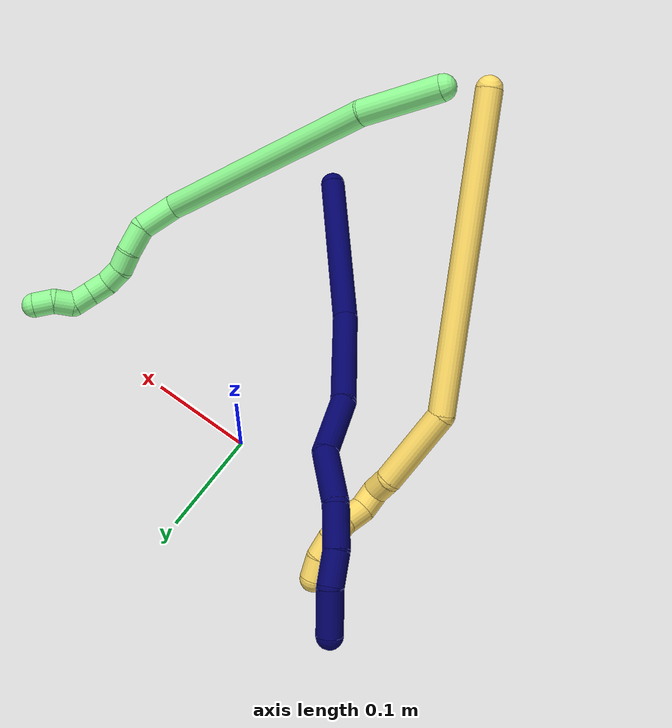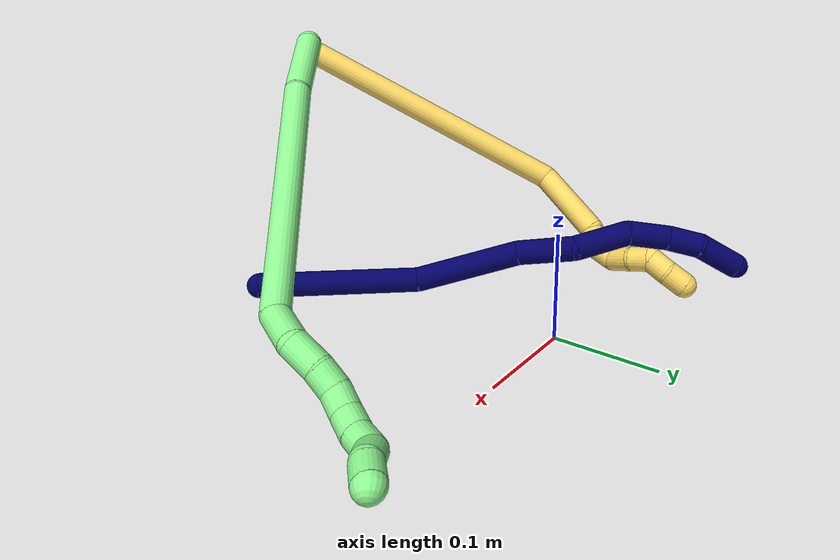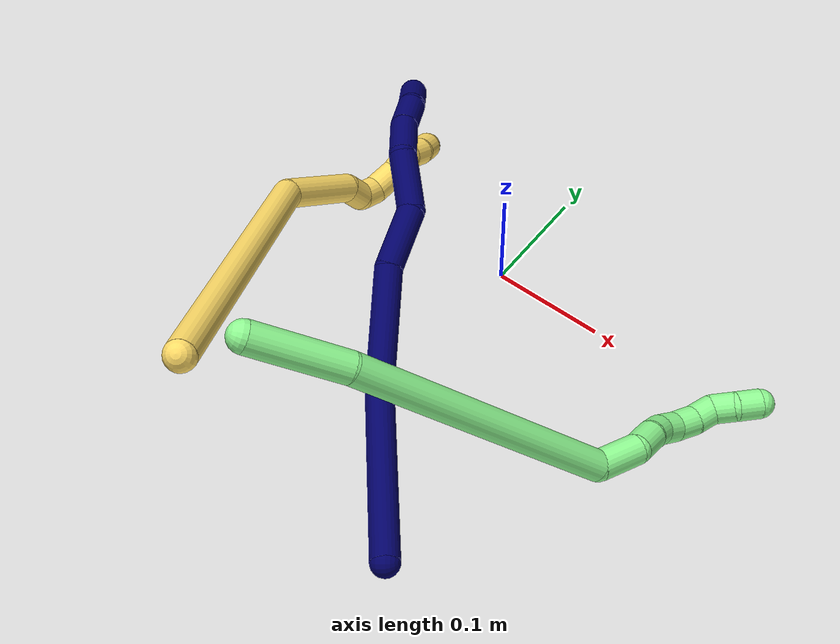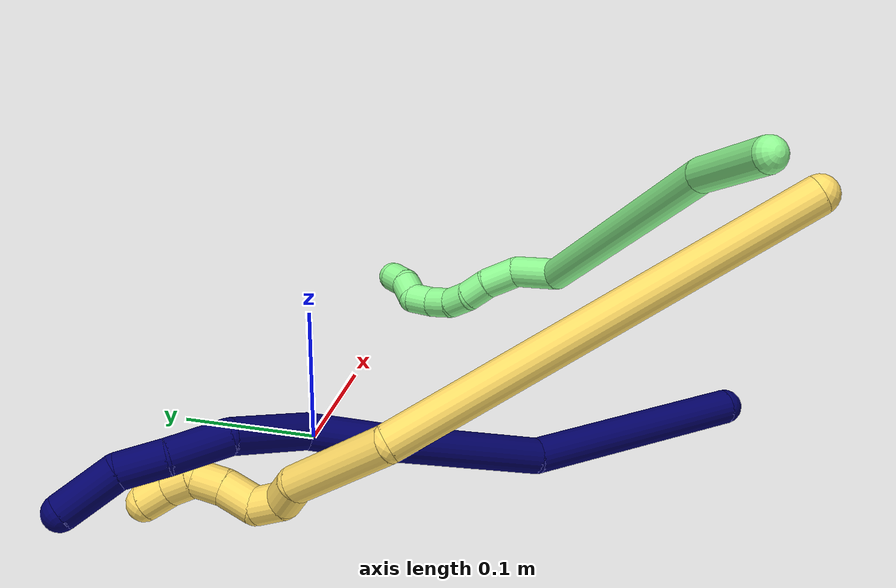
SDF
<sdf version="1.7">
 <world name="default">
  <model name="photoneo_s_sensor">
   <static>1</static>
   <pose>0 0 2 1.57079 1.57079 3.14159</pose>
   <link name="link">
    <inertial><mass>0.1</mass></inertial>
    <sensor name="sensor" type="depth">
     <update_rate>30</update_rate>
     <camera>
      <horizontal_fov>1.22</horizontal_fov>
      <image><width>1920</width><height>1200</height><format>B8G8R8</format></image>
      <clip><near>0.1</near><far>4</far></clip>
      <depth_camera><output>points</output></depth_camera>
     </camera>
     <plugin name="camera_plugin" filename="libgazebo_ros_depth_camera.so">
      <baseline>0.2</baseline>
      <alwaysOn>1</alwaysOn>
      <updateRate>0.0</updateRate>
      <cameraName>camera_ir</cameraName>
      <imageTopicName>/camera/color/image_raw</imageTopicName>
      <cameraInfoTopicName>/camera/color/camera_info</cameraInfoTopicName>
      <depthImageTopicName>/camera/depth/image_raw</depthImageTopicName>
      <depthImageCameraInfoTopicName>/camera/depth/camera_info</depthImageCameraInfoTopicName>
      <pointCloudTopicName>/camera/depth/points</pointCloudTopicName>
      <frameName>fr_optical</frameName>
      <pointCloudCutoff>0.1</pointCloudCutoff>
      <pointCloudCutoffMax>2.0</pointCloudCutoffMax>
      <distortionK1>0</distortionK1>
      <distortionK2>0</distortionK2>
      <distortionK3>0</distortionK3>
      <distortionT1>0</distortionT1>
      <distortionT2>0</distortionT2>
      <CxPrime>0</CxPrime>
      <Cx>0</Cx>
      <Cy>0</Cy>
      <focalLength>0</focalLength>
      <hackBaseline>0</hackBaseline>
     </plugin>
    </sensor>
   </link>
  </model>
  <model name="bin">
   <static>1</static>
   <link name="bottom">
    <collision name="collision-bottom">
     <pose>0 0 -0.01 0 -0 0</pose>
     <geometry><box><size>0.8 0.6 0.02</size></box></geometry>
     <surface>
      <friction><ode><mu>100</mu><mu2>100</mu2></ode></friction>
      <contact><collide_bitmask>65535</collide_bitmask></contact>
     </surface>
    </collision>
   </link>
   <link name="west_wall">
    <collision name="collision-west_wall">
     <pose>-0.41 0 0.1 0 -0 0</pose>
     <geometry><box><size>0.02 0.6 0.2</size></box></geometry>
     <surface>
      <friction><ode><mu>100</mu><mu2>100</mu2></ode></friction>
      <contact><collide_bitmask>65535</collide_bitmask></contact>
     </surface>
    </collision>
   </link>
   <link name="east_wall">
    <collision name="collision-east_wall">
     <pose>0.41 0 0.1 0 -0 0</pose>
     <geometry><box><size>0.02 0.6 0.2</size></box></geometry>
     <surface>
      <friction><ode><mu>100</mu><mu2>100</mu2></ode></friction>
      <contact><collide_bitmask>65535</collide_bitmask></contact>
     </surface>
    </collision>
   </link>
   <link name="south_wall">
    <collision name="collision-south_wall">
     <pose>0 -0.31 0.1 0 -0 0</pose>
     <geometry><box><size>0.8 0.02 0.2</size></box></geometry>
     <surface>
      <friction><ode><mu>100</mu><mu2>100</mu2></ode></friction>
      <contact><collide_bitmask>65535</collide_bitmask></contact>
     </surface>
    </collision>
   </link>
   <link name="north_wall">
    <collision name="collision-north_wall">
     <pose>0 0.31 0.1 0 -0 0</pose>
     <geometry><box><size>0.8 0.02 0.2</size></box></geometry>
     <surface>
      <friction><ode><mu>100</mu><mu2>100</mu2></ode></friction>
      <contact><collide_bitmask>65535</collide_bitmask></contact>
     </surface>
    </collision>
   </link>
  </model>
  <model name="5">
   <static>0</static>
   <link name="5">
    <collision name="collision-cylinder-e_1_1_4">
     <pose>-0.034949 0.068819 -0.125166 -2.63889 -0.239962 0.877903</pose>
     <geometry><cylinder><radius>0.0125</radius><length>0.294103</length></cylinder></geometry>
     <surface>
      <friction><ode><mu>1.16</mu><mu2>1.16</mu2><slip1>0</slip1><slip2>0</slip2></ode></friction>
      <contact><ode><kp>1e+06</kp><kd>1</kd><max_vel>0</max_vel><min_depth>0.001</min_depth></ode></contact>
     </surface>
    </collision>
    <visual name="visual-cylinder-e_1_1_4">
     <pose>-0.034949 0.068819 -0.125166 -2.63889 -0.239962 0.877903</pose>
     <geometry><cylinder><radius>0.0125</radius><length>0.294103</length></cylinder></geometry>
     <material><ambient>1 0.858824 0.4 1</ambient></material>
    </visual>
    <collision name="collision-cylinder-e_2_4_5">
     <pose>-0.057852 0.155744 -0.282515 -2.62912 0.315341 -1.09088</pose>
     <geometry><cylinder><radius>0.0125</radius><length>0.077682</length></cylinder></geometry>
     <surface>
      <friction><ode><mu>1.16</mu><mu2>1.16</mu2><slip1>0</slip1><slip2>0</slip2></ode></friction>
      <contact><ode><kp>1e+06</kp><kd>1</kd><max_vel>0</max_vel><min_depth>0.001</min_depth></ode></contact>
     </surface>
    </collision>
    <visual name="visual-cylinder-e_2_4_5">
     <pose>-0.057852 0.155744 -0.282515 -2.62912 0.315341 -1.09088</pose>
     <geometry><cylinder><radius>0.0125</radius><length>0.077682</length></cylinder></geometry>
     <material><ambient>1 0.858824 0.4 1</ambient></material>
    </visual>
    <collision name="collision-cylinder-e_3_5_6">
     <pose>-0.040585 0.174831 -0.324072 -3.03733 0.505782 -2.74312</pose>
     <geometry><cylinder><radius>0.0125</radius><length>0.021552</length></cylinder></geometry>
     <surface>
      <friction><ode><mu>1.16</mu><mu2>1.16</mu2><slip1>0</slip1><slip2>0</slip2></ode></friction>
      <contact><ode><kp>1e+06</kp><kd>1</kd><max_vel>0</max_vel><min_depth>0.001</min_depth></ode></contact>
     </surface>
    </collision>
    <visual name="visual-cylinder-e_3_5_6">
     <pose>-0.040585 0.174831 -0.324072 -3.03733 0.505782 -2.74312</pose>
     <geometry><cylinder><radius>0.0125</radius><length>0.021552</length></cylinder></geometry>
     <material><ambient>1 0.858824 0.4 1</ambient></material>
    </visual>
    <collision name="collision-cylinder-e_4_6_7">
     <pose>-0.033406 0.182356 -0.340935 -2.4233 0.194379 -0.508166</pose>
     <geometry><cylinder><radius>0.0125</radius><length>0.02027</length></cylinder></geometry>
     <surface>
      <friction><ode><mu>1.16</mu><mu2>1.16</mu2><slip1>0</slip1><slip2>0</slip2></ode></friction>
      <contact><ode><kp>1e+06</kp><kd>1</kd><max_vel>0</max_vel><min_depth>0.001</min_depth></ode></contact>
     </surface>
    </collision>
    <visual name="visual-cylinder-e_4_6_7">
     <pose>-0.033406 0.182356 -0.340935 -2.4233 0.194379 -0.508166</pose>
     <geometry><cylinder><radius>0.0125</radius><length>0.02027</length></cylinder></geometry>
     <material><ambient>1 0.858824 0.4 1</ambient></material>
    </visual>
    <collision name="collision-cylinder-e_5_7_8">
     <pose>-0.028864 0.200844 -0.349955 -1.69843 0.211434 -0.240041</pose>
     <geometry><cylinder><radius>0.0125</radius><length>0.024633</length></cylinder></geometry>
     <surface>
      <friction><ode><mu>1.16</mu><mu2>1.16</mu2><slip1>0</slip1><slip2>0</slip2></ode></friction>
      <contact><ode><kp>1e+06</kp><kd>1</kd><max_vel>0</max_vel><min_depth>0.001</min_depth></ode></contact>
     </surface>
    </collision>
    <visual name="visual-cylinder-e_5_7_8">
     <pose>-0.028864 0.200844 -0.349955 -1.69843 0.211434 -0.240041</pose>
     <geometry><cylinder><radius>0.0125</radius><length>0.024633</length></cylinder></geometry>
     <material><ambient>1 0.858824 0.4 1</ambient></material>
    </visual>
    <collision name="collision-cylinder-e_6_8_9">
     <pose>-0.026305 0.222703 -0.354307 -1.84777 -0.002538 0.00336</pose>
     <geometry><cylinder><radius>0.0125</radius><length>0.020615</length></cylinder></geometry>
     <surface>
      <friction><ode><mu>1.16</mu><mu2>1.16</mu2><slip1>0</slip1><slip2>0</slip2></ode></friction>
      <contact><ode><kp>1e+06</kp><kd>1</kd><max_vel>0</max_vel><min_depth>0.001</min_depth></ode></contact>
     </surface>
    </collision>
    <visual name="visual-cylinder-e_6_8_9">
     <pose>-0.026305 0.222703 -0.354307 -1.84777 -0.002538 0.00336</pose>
     <geometry><cylinder><radius>0.0125</radius><length>0.020615</length></cylinder></geometry>
     <material><ambient>1 0.858824 0.4 1</ambient></material>
    </visual>
    <collision name="collision-cylinder-e_7_9_10">
     <pose>-0.024725 0.238242 -0.365445 -2.54716 0.158585 -0.507657</pose>
     <geometry><cylinder><radius>0.0125</radius><length>0.020341</length></cylinder></geometry>
     <surface>
      <friction><ode><mu>1.16</mu><mu2>1.16</mu2><slip1>0</slip1><slip2>0</slip2></ode></friction>
      <contact><ode><kp>1e+06</kp><kd>1</kd><max_vel>0</max_vel><min_depth>0.001</min_depth></ode></contact>
     </surface>
    </collision>
    <visual name="visual-cylinder-e_7_9_10">
     <pose>-0.024725 0.238242 -0.365445 -2.54716 0.158585 -0.507657</pose>
     <geometry><cylinder><radius>0.0125</radius><length>0.020341</length></cylinder></geometry>
     <material><ambient>1 0.858824 0.4 1</ambient></material>
    </visual>
    <collision name="collision-cylinder-e_8_10_2">
     <pose>-0.023734 0.248555 -0.383031 -2.6732 -0.059143 0.246715</pose>
     <geometry><cylinder><radius>0.0125</radius><length>0.020805</length></cylinder></geometry>
     <surface>
      <friction><ode><mu>1.16</mu><mu2>1.16</mu2><slip1>0</slip1><slip2>0</slip2></ode></friction>
      <contact><ode><kp>1e+06</kp><kd>1</kd><max_vel>0</max_vel><min_depth>0.001</min_depth></ode></contact>
     </surface>
    </collision>
    <visual name="visual-cylinder-e_8_10_2">
     <pose>-0.023734 0.248555 -0.383031 -2.6732 -0.059143 0.246715</pose>
     <geometry><cylinder><radius>0.0125</radius><length>0.020805</length></cylinder></geometry>
     <material><ambient>1 0.858824 0.4 1</ambient></material>
    </visual>
    <collision name="collision-sphere-2">
     <pose>-0.024349 0.253243 -0.392297 0 -0 0</pose>
     <geometry><sphere><radius>0.0125</radius></sphere></geometry>
     <surface>
      <friction><ode><mu>1.16</mu><mu2>1.16</mu2><slip1>0</slip1><slip2>0</slip2></ode></friction>
      <contact><ode><kp>1e+06</kp><kd>1</kd><max_vel>0</max_vel><min_depth>0.001</min_depth></ode></contact>
     </surface>
    </collision>
    <visual name="visual-sphere-2">
     <pose>-0.024349 0.253243 -0.392297 0 -0 0</pose>
     <geometry><sphere><radius>0.0125</radius></sphere></geometry>
     <material><ambient>1 0.858824 0.4 1</ambient></material>
    </visual>
    <collision name="collision-sphere-10">
     <pose>-0.023119 0.243866 -0.373765 0 -0 0</pose>
     <geometry><sphere><radius>0.0125</radius></sphere></geometry>
     <surface>
      <friction><ode><mu>1.16</mu><mu2>1.16</mu2><slip1>0</slip1><slip2>0</slip2></ode></friction>
      <contact><ode><kp>1e+06</kp><kd>1</kd><max_vel>0</max_vel><min_depth>0.001</min_depth></ode></contact>
     </surface>
    </collision>
    <visual name="visual-sphere-10">
     <pose>-0.023119 0.243866 -0.373765 0 -0 0</pose>
     <geometry><sphere><radius>0.0125</radius></sphere></geometry>
     <material><ambient>1 0.858824 0.4 1</ambient></material>
    </visual>
    <collision name="collision-sphere-9">
     <pose>-0.026332 0.232618 -0.357125 0 -0 0</pose>
     <geometry><sphere><radius>0.0125</radius></sphere></geometry>
     <surface>
      <friction><ode><mu>1.16</mu><mu2>1.16</mu2><slip1>0</slip1><slip2>0</slip2></ode></friction>
      <contact><ode><kp>1e+06</kp><kd>1</kd><max_vel>0</max_vel><min_depth>0.001</min_depth></ode></contact>
     </surface>
    </collision>
    <visual name="visual-sphere-9">
     <pose>-0.026332 0.232618 -0.357125 0 -0 0</pose>
     <geometry><sphere><radius>0.0125</radius></sphere></geometry>
     <material><ambient>1 0.858824 0.4 1</ambient></material>
    </visual>
    <collision name="collision-sphere-4">
     <pose>-0.069898 0.137638 -0.250333 0 -0 0</pose>
     <geometry><sphere><radius>0.0125</radius></sphere></geometry>
     <surface>
      <friction><ode><mu>1.16</mu><mu2>1.16</mu2><slip1>0</slip1><slip2>0</slip2></ode></friction>
      <contact><ode><kp>1e+06</kp><kd>1</kd><max_vel>0</max_vel><min_depth>0.001</min_depth></ode></contact>
     </surface>
    </collision>
    <visual name="visual-sphere-4">
     <pose>-0.069898 0.137638 -0.250333 0 -0 0</pose>
     <geometry><sphere><radius>0.0125</radius></sphere></geometry>
     <material><ambient>1 0.858824 0.4 1</ambient></material>
    </visual>
    <collision name="collision-sphere-1">
     <geometry><sphere><radius>0.0125</radius></sphere></geometry>
     <surface>
      <friction><ode><mu>1.16</mu><mu2>1.16</mu2><slip1>0</slip1><slip2>0</slip2></ode></friction>
      <contact><ode><kp>1e+06</kp><kd>1</kd><max_vel>0</max_vel><min_depth>0.001</min_depth></ode></contact>
     </surface>
    </collision>
    <visual name="visual-sphere-1">
     <geometry><sphere><radius>0.0125</radius></sphere></geometry>
     <material><ambient>1 0.858824 0.4 1</ambient></material>
    </visual>
    <collision name="collision-sphere-8">
     <pose>-0.026279 0.212788 -0.351488 0 -0 0</pose>
     <geometry><sphere><radius>0.0125</radius></sphere></geometry>
     <surface>
      <friction><ode><mu>1.16</mu><mu2>1.16</mu2><slip1>0</slip1><slip2>0</slip2></ode></friction>
      <contact><ode><kp>1e+06</kp><kd>1</kd><max_vel>0</max_vel><min_depth>0.001</min_depth></ode></contact>
     </surface>
    </collision>
    <visual name="visual-sphere-8">
     <pose>-0.026279 0.212788 -0.351488 0 -0 0</pose>
     <geometry><sphere><radius>0.0125</radius></sphere></geometry>
     <material><ambient>1 0.858824 0.4 1</ambient></material>
    </visual>
    <collision name="collision-sphere-5">
     <pose>-0.045806 0.17385 -0.314697 0 -0 0</pose>
     <geometry><sphere><radius>0.0125</radius></sphere></geometry>
     <surface>
      <friction><ode><mu>1.16</mu><mu2>1.16</mu2><slip1>0</slip1><slip2>0</slip2></ode></friction>
      <contact><ode><kp>1e+06</kp><kd>1</kd><max_vel>0</max_vel><min_depth>0.001</min_depth></ode></contact>
     </surface>
    </collision>
    <visual name="visual-sphere-5">
     <pose>-0.045806 0.17385 -0.314697 0 -0 0</pose>
     <geometry><sphere><radius>0.0125</radius></sphere></geometry>
     <material><ambient>1 0.858824 0.4 1</ambient></material>
    </visual>
    <collision name="collision-sphere-6">
     <pose>-0.035364 0.175812 -0.333448 0 -0 0</pose>
     <geometry><sphere><radius>0.0125</radius></sphere></geometry>
     <surface>
      <friction><ode><mu>1.16</mu><mu2>1.16</mu2><slip1>0</slip1><slip2>0</slip2></ode></friction>
      <contact><ode><kp>1e+06</kp><kd>1</kd><max_vel>0</max_vel><min_depth>0.001</min_depth></ode></contact>
     </surface>
    </collision>
    <visual name="visual-sphere-6">
     <pose>-0.035364 0.175812 -0.333448 0 -0 0</pose>
     <geometry><sphere><radius>0.0125</radius></sphere></geometry>
     <material><ambient>1 0.858824 0.4 1</ambient></material>
    </visual>
    <collision name="collision-sphere-7">
     <pose>-0.031449 0.1889 -0.348422 0 -0 0</pose>
     <geometry><sphere><radius>0.0125</radius></sphere></geometry>
     <surface>
      <friction><ode><mu>1.16</mu><mu2>1.16</mu2><slip1>0</slip1><slip2>0</slip2></ode></friction>
      <contact><ode><kp>1e+06</kp><kd>1</kd><max_vel>0</max_vel><min_depth>0.001</min_depth></ode></contact>
     </surface>
    </collision>
    <visual name="visual-sphere-7">
     <pose>-0.031449 0.1889 -0.348422 0 -0 0</pose>
     <geometry><sphere><radius>0.0125</radius></sphere></geometry>
     <material><ambient>1 0.858824 0.4 1</ambient></material>
    </visual>
    <inertial>
     <pose>-0.037149 0.118716 -0.20796 0 -0 0</pose>
     <mass>0.5</mass>
     <inertia>
      <ixx>0.002901</ixx>
      <ixy>0</ixy>
      <ixz>0</ixz>
      <iyy>0.000556</iyy>
      <iyz>0</iyz>
      <izz>-0.000562</izz>
     </inertia>
    </inertial>
   </link>
   <pose>-0.032865 -0.333281 0.232758 0.491814 0.233147 0.07039</pose>
  </model>
  <model name="7">
   <static>0</static>
   <link name="7">
    <collision name="collision-cylinder-e_1_1_4">
     <pose>-0.051455 -0.059579 0.014661 1.32951 -0.697855 -0.555537</pose>
     <geometry><cylinder><radius>0.0125</radius><length>0.160154</length></cylinder></geometry>
     <surface>
      <friction><ode><mu>1.16</mu><mu2>1.16</mu2><slip1>0</slip1><slip2>0</slip2></ode></friction>
      <contact><ode><kp>1e+06</kp><kd>1</kd><max_vel>0</max_vel><min_depth>0.001</min_depth></ode></contact>
     </surface>
    </collision>
    <visual name="visual-cylinder-e_1_1_4">
     <pose>-0.051455 -0.059579 0.014661 1.32951 -0.697855 -0.555537</pose>
     <geometry><cylinder><radius>0.0125</radius><length>0.160154</length></cylinder></geometry>
     <material><ambient>0.003922 0 0.403922 1</ambient></material>
    </visual>
    <collision name="collision-cylinder-e_2_4_5">
     <pose>-0.147204 -0.149866 0.029527 1.56412 -0.96458 -0.959107</pose>
     <geometry><cylinder><radius>0.0125</radius><length>0.107794</length></cylinder></geometry>
     <surface>
      <friction><ode><mu>1.16</mu><mu2>1.16</mu2><slip1>0</slip1><slip2>0</slip2></ode></friction>
      <contact><ode><kp>1e+06</kp><kd>1</kd><max_vel>0</max_vel><min_depth>0.001</min_depth></ode></contact>
     </surface>
    </collision>
    <visual name="visual-cylinder-e_2_4_5">
     <pose>-0.147204 -0.149866 0.029527 1.56412 -0.96458 -0.959107</pose>
     <geometry><cylinder><radius>0.0125</radius><length>0.107794</length></cylinder></geometry>
     <material><ambient>0.003922 0 0.403922 1</ambient></material>
    </visual>
    <collision name="collision-cylinder-e_3_5_6">
     <pose>-0.212322 -0.200234 0.022848 1.9076 -0.785281 -1.05686</pose>
     <geometry><cylinder><radius>0.0125</radius><length>0.058911</length></cylinder></geometry>
     <surface>
      <friction><ode><mu>1.16</mu><mu2>1.16</mu2><slip1>0</slip1><slip2>0</slip2></ode></friction>
      <contact><ode><kp>1e+06</kp><kd>1</kd><max_vel>0</max_vel><min_depth>0.001</min_depth></ode></contact>
     </surface>
    </collision>
    <visual name="visual-cylinder-e_3_5_6">
     <pose>-0.212322 -0.200234 0.022848 1.9076 -0.785281 -1.05686</pose>
     <geometry><cylinder><radius>0.0125</radius><length>0.058911</length></cylinder></geometry>
     <material><ambient>0.003922 0 0.403922 1</ambient></material>
    </visual>
    <collision name="collision-cylinder-e_4_6_7">
     <pose>-0.255532 -0.23551 0.021794 1.2135 -0.930716 -0.67073</pose>
     <geometry><cylinder><radius>0.0125</radius><length>0.055816</length></cylinder></geometry>
     <surface>
      <friction><ode><mu>1.16</mu><mu2>1.16</mu2><slip1>0</slip1><slip2>0</slip2></ode></friction>
      <contact><ode><kp>1e+06</kp><kd>1</kd><max_vel>0</max_vel><min_depth>0.001</min_depth></ode></contact>
     </surface>
    </collision>
    <visual name="visual-cylinder-e_4_6_7">
     <pose>-0.255532 -0.23551 0.021794 1.2135 -0.930716 -0.67073</pose>
     <geometry><cylinder><radius>0.0125</radius><length>0.055816</length></cylinder></geometry>
     <material><ambient>0.003922 0 0.403922 1</ambient></material>
    </visual>
    <collision name="collision-cylinder-e_5_7_8">
     <pose>-0.288744 -0.268416 0.030912 1.38288 -0.551561 -0.4602</pose>
     <geometry><cylinder><radius>0.0125</radius><length>0.041329</length></cylinder></geometry>
     <surface>
      <friction><ode><mu>1.16</mu><mu2>1.16</mu2><slip1>0</slip1><slip2>0</slip2></ode></friction>
      <contact><ode><kp>1e+06</kp><kd>1</kd><max_vel>0</max_vel><min_depth>0.001</min_depth></ode></contact>
     </surface>
    </collision>
    <visual name="visual-cylinder-e_5_7_8">
     <pose>-0.288744 -0.268416 0.030912 1.38288 -0.551561 -0.4602</pose>
     <geometry><cylinder><radius>0.0125</radius><length>0.041329</length></cylinder></geometry>
     <material><ambient>0.003922 0 0.403922 1</ambient></material>
    </visual>
    <collision name="collision-cylinder-e_6_8_9">
     <pose>-0.306762 -0.300423 0.034146 1.57446 -0.454453 -0.456064</pose>
     <geometry><cylinder><radius>0.0125</radius><length>0.032757</length></cylinder></geometry>
     <surface>
      <friction><ode><mu>1.16</mu><mu2>1.16</mu2><slip1>0</slip1><slip2>0</slip2></ode></friction>
      <contact><ode><kp>1e+06</kp><kd>1</kd><max_vel>0</max_vel><min_depth>0.001</min_depth></ode></contact>
     </surface>
    </collision>
    <visual name="visual-cylinder-e_6_8_9">
     <pose>-0.306762 -0.300423 0.034146 1.57446 -0.454453 -0.456064</pose>
     <geometry><cylinder><radius>0.0125</radius><length>0.032757</length></cylinder></geometry>
     <material><ambient>0.003922 0 0.403922 1</ambient></material>
    </visual>
    <collision name="collision-cylinder-e_7_9_2">
     <pose>-0.317584 -0.335932 0.038765 1.34973 -0.168788 -0.135179</pose>
     <geometry><cylinder><radius>0.0125</radius><length>0.043239</length></cylinder></geometry>
     <surface>
      <friction><ode><mu>1.16</mu><mu2>1.16</mu2><slip1>0</slip1><slip2>0</slip2></ode></friction>
      <contact><ode><kp>1e+06</kp><kd>1</kd><max_vel>0</max_vel><min_depth>0.001</min_depth></ode></contact>
     </surface>
    </collision>
    <visual name="visual-cylinder-e_7_9_2">
     <pose>-0.317584 -0.335932 0.038765 1.34973 -0.168788 -0.135179</pose>
     <geometry><cylinder><radius>0.0125</radius><length>0.043239</length></cylinder></geometry>
     <material><ambient>0.003922 0 0.403922 1</ambient></material>
    </visual>
    <collision name="collision-sphere-2">
     <pose>-0.321216 -0.356726 0.043439 0 -0 0</pose>
     <geometry><sphere><radius>0.0125</radius></sphere></geometry>
     <surface>
      <friction><ode><mu>1.16</mu><mu2>1.16</mu2><slip1>0</slip1><slip2>0</slip2></ode></friction>
      <contact><ode><kp>1e+06</kp><kd>1</kd><max_vel>0</max_vel><min_depth>0.001</min_depth></ode></contact>
     </surface>
    </collision>
    <visual name="visual-sphere-2">
     <pose>-0.321216 -0.356726 0.043439 0 -0 0</pose>
     <geometry><sphere><radius>0.0125</radius></sphere></geometry>
     <material><ambient>0.003922 0 0.403922 1</ambient></material>
    </visual>
    <collision name="collision-sphere-9">
     <pose>-0.313952 -0.315139 0.034092 0 -0 0</pose>
     <geometry><sphere><radius>0.0125</radius></sphere></geometry>
     <surface>
      <friction><ode><mu>1.16</mu><mu2>1.16</mu2><slip1>0</slip1><slip2>0</slip2></ode></friction>
      <contact><ode><kp>1e+06</kp><kd>1</kd><max_vel>0</max_vel><min_depth>0.001</min_depth></ode></contact>
     </surface>
    </collision>
    <visual name="visual-sphere-9">
     <pose>-0.313952 -0.315139 0.034092 0 -0 0</pose>
     <geometry><sphere><radius>0.0125</radius></sphere></geometry>
     <material><ambient>0.003922 0 0.403922 1</ambient></material>
    </visual>
    <collision name="collision-sphere-4">
     <pose>-0.102911 -0.119158 0.029323 0 -0 0</pose>
     <geometry><sphere><radius>0.0125</radius></sphere></geometry>
     <surface>
      <friction><ode><mu>1.16</mu><mu2>1.16</mu2><slip1>0</slip1><slip2>0</slip2></ode></friction>
      <contact><ode><kp>1e+06</kp><kd>1</kd><max_vel>0</max_vel><min_depth>0.001</min_depth></ode></contact>
     </surface>
    </collision>
    <visual name="visual-sphere-4">
     <pose>-0.102911 -0.119158 0.029323 0 -0 0</pose>
     <geometry><sphere><radius>0.0125</radius></sphere></geometry>
     <material><ambient>0.003922 0 0.403922 1</ambient></material>
    </visual>
    <collision name="collision-sphere-1">
     <geometry><sphere><radius>0.0125</radius></sphere></geometry>
     <surface>
      <friction><ode><mu>1.16</mu><mu2>1.16</mu2><slip1>0</slip1><slip2>0</slip2></ode></friction>
      <contact><ode><kp>1e+06</kp><kd>1</kd><max_vel>0</max_vel><min_depth>0.001</min_depth></ode></contact>
     </surface>
    </collision>
    <visual name="visual-sphere-1">
     <geometry><sphere><radius>0.0125</radius></sphere></geometry>
     <material><ambient>0.003922 0 0.403922 1</ambient></material>
    </visual>
    <collision name="collision-sphere-8">
     <pose>-0.299573 -0.285707 0.0342 0 -0 0</pose>
     <geometry><sphere><radius>0.0125</radius></sphere></geometry>
     <surface>
      <friction><ode><mu>1.16</mu><mu2>1.16</mu2><slip1>0</slip1><slip2>0</slip2></ode></friction>
      <contact><ode><kp>1e+06</kp><kd>1</kd><max_vel>0</max_vel><min_depth>0.001</min_depth></ode></contact>
     </surface>
    </collision>
    <visual name="visual-sphere-8">
     <pose>-0.299573 -0.285707 0.0342 0 -0 0</pose>
     <geometry><sphere><radius>0.0125</radius></sphere></geometry>
     <material><ambient>0.003922 0 0.403922 1</ambient></material>
    </visual>
    <collision name="collision-sphere-5">
     <pose>-0.191497 -0.180574 0.029732 0 -0 0</pose>
     <geometry><sphere><radius>0.0125</radius></sphere></geometry>
     <surface>
      <friction><ode><mu>1.16</mu><mu2>1.16</mu2><slip1>0</slip1><slip2>0</slip2></ode></friction>
      <contact><ode><kp>1e+06</kp><kd>1</kd><max_vel>0</max_vel><min_depth>0.001</min_depth></ode></contact>
     </surface>
    </collision>
    <visual name="visual-sphere-5">
     <pose>-0.191497 -0.180574 0.029732 0 -0 0</pose>
     <geometry><sphere><radius>0.0125</radius></sphere></geometry>
     <material><ambient>0.003922 0 0.403922 1</ambient></material>
    </visual>
    <collision name="collision-sphere-6">
     <pose>-0.233148 -0.219894 0.015965 0 -0 0</pose>
     <geometry><sphere><radius>0.0125</radius></sphere></geometry>
     <surface>
      <friction><ode><mu>1.16</mu><mu2>1.16</mu2><slip1>0</slip1><slip2>0</slip2></ode></friction>
      <contact><ode><kp>1e+06</kp><kd>1</kd><max_vel>0</max_vel><min_depth>0.001</min_depth></ode></contact>
     </surface>
    </collision>
    <visual name="visual-sphere-6">
     <pose>-0.233148 -0.219894 0.015965 0 -0 0</pose>
     <geometry><sphere><radius>0.0125</radius></sphere></geometry>
     <material><ambient>0.003922 0 0.403922 1</ambient></material>
    </visual>
    <collision name="collision-sphere-7">
     <pose>-0.277915 -0.251126 0.027624 0 -0 0</pose>
     <geometry><sphere><radius>0.0125</radius></sphere></geometry>
     <surface>
      <friction><ode><mu>1.16</mu><mu2>1.16</mu2><slip1>0</slip1><slip2>0</slip2></ode></friction>
      <contact><ode><kp>1e+06</kp><kd>1</kd><max_vel>0</max_vel><min_depth>0.001</min_depth></ode></contact>
     </surface>
    </collision>
    <visual name="visual-sphere-7">
     <pose>-0.277915 -0.251126 0.027624 0 -0 0</pose>
     <geometry><sphere><radius>0.0125</radius></sphere></geometry>
     <material><ambient>0.003922 0 0.403922 1</ambient></material>
    </visual>
    <inertial>
     <pose>-0.173187 -0.172195 0.024331 0 -0 0</pose>
     <mass>0.5</mass>
     <inertia><ixx>5.4e-05</ixx><ixy>0</ixy><ixz>0</ixz><iyy>4.2e-05</iyy><iyz>0</iyz><izz>0.000712</izz></inertia>
    </inertial>
   </link>
   <pose>0.098346 -0.287416 0.012537 1.96021 0.865692 -0.752174</pose>
  </model>
  <model name="13">
   <static>0</static>
   <link name="13">
    <collision name="collision-cylinder-e_1_1_4">
     <pose>-0.000467 0.000228 -0.039695 -3.13585 -0.011769 2.23364</pose>
     <geometry><cylinder><radius>0.0125</radius><length>0.079397</length></cylinder></geometry>
     <surface>
      <friction><ode><mu>1.16</mu><mu2>1.16</mu2><slip1>0</slip1><slip2>0</slip2></ode></friction>
      <contact><ode><kp>1e+06</kp><kd>1</kd><max_vel>0</max_vel><min_depth>0.001</min_depth></ode></contact>
     </surface>
    </collision>
    <visual name="visual-cylinder-e_1_1_4">
     <pose>-0.000467 0.000228 -0.039695 -3.13585 -0.011769 2.23364</pose>
     <geometry><cylinder><radius>0.0125</radius><length>0.079397</length></cylinder></geometry>
     <material><ambient>0.564706 0.984314 0.572549 1</ambient></material>
    </visual>
    <collision name="collision-cylinder-e_2_4_5">
     <pose>-0.014416 0.020004 -0.193374 -2.97175 -0.116053 1.19766</pose>
     <geometry><cylinder><radius>0.0125</radius><length>0.232864</length></cylinder></geometry>
     <surface>
      <friction><ode><mu>1.16</mu><mu2>1.16</mu2><slip1>0</slip1><slip2>0</slip2></ode></friction>
      <contact><ode><kp>1e+06</kp><kd>1</kd><max_vel>0</max_vel><min_depth>0.001</min_depth></ode></contact>
     </surface>
    </collision>
    <visual name="visual-cylinder-e_2_4_5">
     <pose>-0.014416 0.020004 -0.193374 -2.97175 -0.116053 1.19766</pose>
     <geometry><cylinder><radius>0.0125</radius><length>0.232864</length></cylinder></geometry>
     <material><ambient>0.564706 0.984314 0.572549 1</ambient></material>
    </visual>
    <collision name="collision-cylinder-e_3_5_6">
     <pose>-0.018142 0.043474 -0.323239 -2.89942 0.537817 -2.30999</pose>
     <geometry><cylinder><radius>0.0125</radius><length>0.038092</length></cylinder></geometry>
     <surface>
      <friction><ode><mu>1.16</mu><mu2>1.16</mu2><slip1>0</slip1><slip2>0</slip2></ode></friction>
      <contact><ode><kp>1e+06</kp><kd>1</kd><max_vel>0</max_vel><min_depth>0.001</min_depth></ode></contact>
     </surface>
    </collision>
    <visual name="visual-cylinder-e_3_5_6">
     <pose>-0.018142 0.043474 -0.323239 -2.89942 0.537817 -2.30999</pose>
     <geometry><cylinder><radius>0.0125</radius><length>0.038092</length></cylinder></geometry>
     <material><ambient>0.564706 0.984314 0.572549 1</ambient></material>
    </visual>
    <collision name="collision-cylinder-e_4_6_7">
     <pose>-0.002841 0.056386 -0.348446 -2.3746 0.404412 -0.940224</pose>
     <geometry><cylinder><radius>0.0125</radius><length>0.02818</length></cylinder></geometry>
     <surface>
      <friction><ode><mu>1.16</mu><mu2>1.16</mu2><slip1>0</slip1><slip2>0</slip2></ode></friction>
      <contact><ode><kp>1e+06</kp><kd>1</kd><max_vel>0</max_vel><min_depth>0.001</min_depth></ode></contact>
     </surface>
    </collision>
    <visual name="visual-cylinder-e_4_6_7">
     <pose>-0.002841 0.056386 -0.348446 -2.3746 0.404412 -0.940224</pose>
     <geometry><cylinder><radius>0.0125</radius><length>0.02818</length></cylinder></geometry>
     <material><ambient>0.564706 0.984314 0.572549 1</ambient></material>
    </visual>
    <collision name="collision-cylinder-e_5_7_8">
     <pose>0.004799 0.072506 -0.364641 -2.3375 0.208544 -0.482648</pose>
     <geometry><cylinder><radius>0.0125</radius><length>0.020239</length></cylinder></geometry>
     <surface>
      <friction><ode><mu>1.16</mu><mu2>1.16</mu2><slip1>0</slip1><slip2>0</slip2></ode></friction>
      <contact><ode><kp>1e+06</kp><kd>1</kd><max_vel>0</max_vel><min_depth>0.001</min_depth></ode></contact>
     </surface>
    </collision>
    <visual name="visual-cylinder-e_5_7_8">
     <pose>0.004799 0.072506 -0.364641 -2.3375 0.208544 -0.482648</pose>
     <geometry><cylinder><radius>0.0125</radius><length>0.020239</length></cylinder></geometry>
     <material><ambient>0.564706 0.984314 0.572549 1</ambient></material>
    </visual>
    <collision name="collision-cylinder-e_6_8_9">
     <pose>0.009216 0.08406 -0.380219 -2.6716 0.233406 -0.9107</pose>
     <geometry><cylinder><radius>0.0125</radius><length>0.020081</length></cylinder></geometry>
     <surface>
      <friction><ode><mu>1.16</mu><mu2>1.16</mu2><slip1>0</slip1><slip2>0</slip2></ode></friction>
      <contact><ode><kp>1e+06</kp><kd>1</kd><max_vel>0</max_vel><min_depth>0.001</min_depth></ode></contact>
     </surface>
    </collision>
    <visual name="visual-cylinder-e_6_8_9">
     <pose>0.009216 0.08406 -0.380219 -2.6716 0.233406 -0.9107</pose>
     <geometry><cylinder><radius>0.0125</radius><length>0.020081</length></cylinder></geometry>
     <material><ambient>0.564706 0.984314 0.572549 1</ambient></material>
    </visual>
    <collision name="collision-cylinder-e_7_9_10">
     <pose>0.016172 0.090568 -0.397889 -2.91306 0.466572 -2.24169</pose>
     <geometry><cylinder><radius>0.0125</radius><length>0.020603</length></cylinder></geometry>
     <surface>
      <friction><ode><mu>1.16</mu><mu2>1.16</mu2><slip1>0</slip1><slip2>0</slip2></ode></friction>
      <contact><ode><kp>1e+06</kp><kd>1</kd><max_vel>0</max_vel><min_depth>0.001</min_depth></ode></contact>
     </surface>
    </collision>
    <visual name="visual-cylinder-e_7_9_10">
     <pose>0.016172 0.090568 -0.397889 -2.91306 0.466572 -2.24169</pose>
     <geometry><cylinder><radius>0.0125</radius><length>0.020603</length></cylinder></geometry>
     <material><ambient>0.564706 0.984314 0.572549 1</ambient></material>
    </visual>
    <collision name="collision-cylinder-e_8_10_11">
     <pose>0.027167 0.094274 -0.414567 -2.93443 0.678783 -2.56889</pose>
     <geometry><cylinder><radius>0.0125</radius><length>0.020262</length></cylinder></geometry>
     <surface>
      <friction><ode><mu>1.16</mu><mu2>1.16</mu2><slip1>0</slip1><slip2>0</slip2></ode></friction>
      <contact><ode><kp>1e+06</kp><kd>1</kd><max_vel>0</max_vel><min_depth>0.001</min_depth></ode></contact>
     </surface>
    </collision>
    <visual name="visual-cylinder-e_8_10_11">
     <pose>0.027167 0.094274 -0.414567 -2.93443 0.678783 -2.56889</pose>
     <geometry><cylinder><radius>0.0125</radius><length>0.020262</length></cylinder></geometry>
     <material><ambient>0.564706 0.984314 0.572549 1</ambient></material>
    </visual>
    <collision name="collision-cylinder-e_9_11_12">
     <pose>0.037996 0.09058 -0.429512 2.50741 0.461978 1.24367</pose>
     <geometry><cylinder><radius>0.0125</radius><length>0.020048</length></cylinder></geometry>
     <surface>
      <friction><ode><mu>1.16</mu><mu2>1.16</mu2><slip1>0</slip1><slip2>0</slip2></ode></friction>
      <contact><ode><kp>1e+06</kp><kd>1</kd><max_vel>0</max_vel><min_depth>0.001</min_depth></ode></contact>
     </surface>
    </collision>
    <visual name="visual-cylinder-e_9_11_12">
     <pose>0.037996 0.09058 -0.429512 2.50741 0.461978 1.24367</pose>
     <geometry><cylinder><radius>0.0125</radius><length>0.020048</length></cylinder></geometry>
     <material><ambient>0.564706 0.984314 0.572549 1</ambient></material>
    </visual>
    <collision name="collision-cylinder-e_10_12_2">
     <pose>0.046517 0.08368 -0.445874 2.96995 0.412309 2.36103</pose>
     <geometry><cylinder><radius>0.0125</radius><length>0.020233</length></cylinder></geometry>
     <surface>
      <friction><ode><mu>1.16</mu><mu2>1.16</mu2><slip1>0</slip1><slip2>0</slip2></ode></friction>
      <contact><ode><kp>1e+06</kp><kd>1</kd><max_vel>0</max_vel><min_depth>0.001</min_depth></ode></contact>
     </surface>
    </collision>
    <visual name="visual-cylinder-e_10_12_2">
     <pose>0.046517 0.08368 -0.445874 2.96995 0.412309 2.36103</pose>
     <geometry><cylinder><radius>0.0125</radius><length>0.020233</length></cylinder></geometry>
     <material><ambient>0.564706 0.984314 0.572549 1</ambient></material>
    </visual>
    <collision name="collision-sphere-2">
     <pose>0.050571 0.082097 -0.455006 0 -0 0</pose>
     <geometry><sphere><radius>0.0125</radius></sphere></geometry>
     <surface>
      <friction><ode><mu>1.16</mu><mu2>1.16</mu2><slip1>0</slip1><slip2>0</slip2></ode></friction>
      <contact><ode><kp>1e+06</kp><kd>1</kd><max_vel>0</max_vel><min_depth>0.001</min_depth></ode></contact>
     </surface>
    </collision>
    <visual name="visual-sphere-2">
     <pose>0.050571 0.082097 -0.455006 0 -0 0</pose>
     <geometry><sphere><radius>0.0125</radius></sphere></geometry>
     <material><ambient>0.564706 0.984314 0.572549 1</ambient></material>
    </visual>
    <collision name="collision-sphere-12">
     <pose>0.042463 0.085263 -0.436741 0 -0 0</pose>
     <geometry><sphere><radius>0.0125</radius></sphere></geometry>
     <surface>
      <friction><ode><mu>1.16</mu><mu2>1.16</mu2><slip1>0</slip1><slip2>0</slip2></ode></friction>
      <contact><ode><kp>1e+06</kp><kd>1</kd><max_vel>0</max_vel><min_depth>0.001</min_depth></ode></contact>
     </surface>
    </collision>
    <visual name="visual-sphere-12">
     <pose>0.042463 0.085263 -0.436741 0 -0 0</pose>
     <geometry><sphere><radius>0.0125</radius></sphere></geometry>
     <material><ambient>0.564706 0.984314 0.572549 1</ambient></material>
    </visual>
    <collision name="collision-sphere-11">
     <pose>0.033528 0.095896 -0.422284 0 -0 0</pose>
     <geometry><sphere><radius>0.0125</radius></sphere></geometry>
     <surface>
      <friction><ode><mu>1.16</mu><mu2>1.16</mu2><slip1>0</slip1><slip2>0</slip2></ode></friction>
      <contact><ode><kp>1e+06</kp><kd>1</kd><max_vel>0</max_vel><min_depth>0.001</min_depth></ode></contact>
     </surface>
    </collision>
    <visual name="visual-sphere-11">
     <pose>0.033528 0.095896 -0.422284 0 -0 0</pose>
     <geometry><sphere><radius>0.0125</radius></sphere></geometry>
     <material><ambient>0.564706 0.984314 0.572549 1</ambient></material>
    </visual>
    <collision name="collision-sphere-10">
     <pose>0.020806 0.092653 -0.40685 0 -0 0</pose>
     <geometry><sphere><radius>0.0125</radius></sphere></geometry>
     <surface>
      <friction><ode><mu>1.16</mu><mu2>1.16</mu2><slip1>0</slip1><slip2>0</slip2></ode></friction>
      <contact><ode><kp>1e+06</kp><kd>1</kd><max_vel>0</max_vel><min_depth>0.001</min_depth></ode></contact>
     </surface>
    </collision>
    <visual name="visual-sphere-10">
     <pose>0.020806 0.092653 -0.40685 0 -0 0</pose>
     <geometry><sphere><radius>0.0125</radius></sphere></geometry>
     <material><ambient>0.564706 0.984314 0.572549 1</ambient></material>
    </visual>
    <collision name="collision-sphere-9">
     <pose>0.011538 0.088484 -0.388928 0 -0 0</pose>
     <geometry><sphere><radius>0.0125</radius></sphere></geometry>
     <surface>
      <friction><ode><mu>1.16</mu><mu2>1.16</mu2><slip1>0</slip1><slip2>0</slip2></ode></friction>
      <contact><ode><kp>1e+06</kp><kd>1</kd><max_vel>0</max_vel><min_depth>0.001</min_depth></ode></contact>
     </surface>
    </collision>
    <visual name="visual-sphere-9">
     <pose>0.011538 0.088484 -0.388928 0 -0 0</pose>
     <geometry><sphere><radius>0.0125</radius></sphere></geometry>
     <material><ambient>0.564706 0.984314 0.572549 1</ambient></material>
    </visual>
    <collision name="collision-sphere-4">
     <pose>-0.000934 0.000456 -0.07939 0 -0 0</pose>
     <geometry><sphere><radius>0.0125</radius></sphere></geometry>
     <surface>
      <friction><ode><mu>1.16</mu><mu2>1.16</mu2><slip1>0</slip1><slip2>0</slip2></ode></friction>
      <contact><ode><kp>1e+06</kp><kd>1</kd><max_vel>0</max_vel><min_depth>0.001</min_depth></ode></contact>
     </surface>
    </collision>
    <visual name="visual-sphere-4">
     <pose>-0.000934 0.000456 -0.07939 0 -0 0</pose>
     <geometry><sphere><radius>0.0125</radius></sphere></geometry>
     <material><ambient>0.564706 0.984314 0.572549 1</ambient></material>
    </visual>
    <collision name="collision-sphere-1">
     <geometry><sphere><radius>0.0125</radius></sphere></geometry>
     <surface>
      <friction><ode><mu>1.16</mu><mu2>1.16</mu2><slip1>0</slip1><slip2>0</slip2></ode></friction>
      <contact><ode><kp>1e+06</kp><kd>1</kd><max_vel>0</max_vel><min_depth>0.001</min_depth></ode></contact>
     </surface>
    </collision>
    <visual name="visual-sphere-1">
     <geometry><sphere><radius>0.0125</radius></sphere></geometry>
     <material><ambient>0.564706 0.984314 0.572549 1</ambient></material>
    </visual>
    <collision name="collision-sphere-8">
     <pose>0.006894 0.079636 -0.37151 0 -0 0</pose>
     <geometry><sphere><radius>0.0125</radius></sphere></geometry>
     <surface>
      <friction><ode><mu>1.16</mu><mu2>1.16</mu2><slip1>0</slip1><slip2>0</slip2></ode></friction>
      <contact><ode><kp>1e+06</kp><kd>1</kd><max_vel>0</max_vel><min_depth>0.001</min_depth></ode></contact>
     </surface>
    </collision>
    <visual name="visual-sphere-8">
     <pose>0.006894 0.079636 -0.37151 0 -0 0</pose>
     <geometry><sphere><radius>0.0125</radius></sphere></geometry>
     <material><ambient>0.564706 0.984314 0.572549 1</ambient></material>
    </visual>
    <collision name="collision-sphere-5">
     <pose>-0.027898 0.039551 -0.307359 0 -0 0</pose>
     <geometry><sphere><radius>0.0125</radius></sphere></geometry>
     <surface>
      <friction><ode><mu>1.16</mu><mu2>1.16</mu2><slip1>0</slip1><slip2>0</slip2></ode></friction>
      <contact><ode><kp>1e+06</kp><kd>1</kd><max_vel>0</max_vel><min_depth>0.001</min_depth></ode></contact>
     </surface>
    </collision>
    <visual name="visual-sphere-5">
     <pose>-0.027898 0.039551 -0.307359 0 -0 0</pose>
     <geometry><sphere><radius>0.0125</radius></sphere></geometry>
     <material><ambient>0.564706 0.984314 0.572549 1</ambient></material>
    </visual>
    <collision name="collision-sphere-6">
     <pose>-0.008385 0.047397 -0.339119 0 -0 0</pose>
     <geometry><sphere><radius>0.0125</radius></sphere></geometry>
     <surface>
      <friction><ode><mu>1.16</mu><mu2>1.16</mu2><slip1>0</slip1><slip2>0</slip2></ode></friction>
      <contact><ode><kp>1e+06</kp><kd>1</kd><max_vel>0</max_vel><min_depth>0.001</min_depth></ode></contact>
     </surface>
    </collision>
    <visual name="visual-sphere-6">
     <pose>-0.008385 0.047397 -0.339119 0 -0 0</pose>
     <geometry><sphere><radius>0.0125</radius></sphere></geometry>
     <material><ambient>0.564706 0.984314 0.572549 1</ambient></material>
    </visual>
    <collision name="collision-sphere-7">
     <pose>0.002704 0.065376 -0.357772 0 -0 0</pose>
     <geometry><sphere><radius>0.0125</radius></sphere></geometry>
     <surface>
      <friction><ode><mu>1.16</mu><mu2>1.16</mu2><slip1>0</slip1><slip2>0</slip2></ode></friction>
      <contact><ode><kp>1e+06</kp><kd>1</kd><max_vel>0</max_vel><min_depth>0.001</min_depth></ode></contact>
     </surface>
    </collision>
    <visual name="visual-sphere-7">
     <pose>0.002704 0.065376 -0.357772 0 -0 0</pose>
     <geometry><sphere><radius>0.0125</radius></sphere></geometry>
     <material><ambient>0.564706 0.984314 0.572549 1</ambient></material>
    </visual>
    <inertial>
     <pose>-0.002593 0.036724 -0.239118 0 -0 0</pose>
     <mass>0.5</mass>
     <inertia>
      <ixx>0.001368</ixx>
      <ixy>0</ixy>
      <ixz>0</ixz>
      <iyy>0.000688</iyy>
      <iyz>0</iyz>
      <izz>-0.000103</izz>
     </inertia>
    </inertial>
   </link>
   <pose>-0.002882 -0.301667 0.244754 -0.95935 -0.663156 1.81466</pose>
  </model>
 </world>
</sdf>
